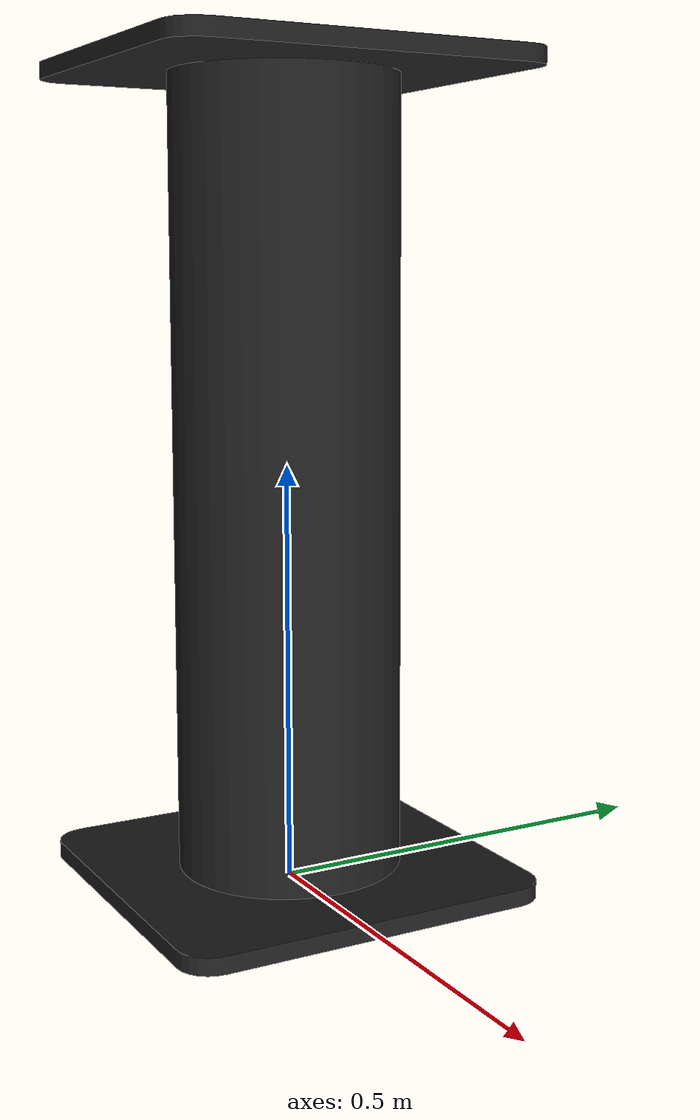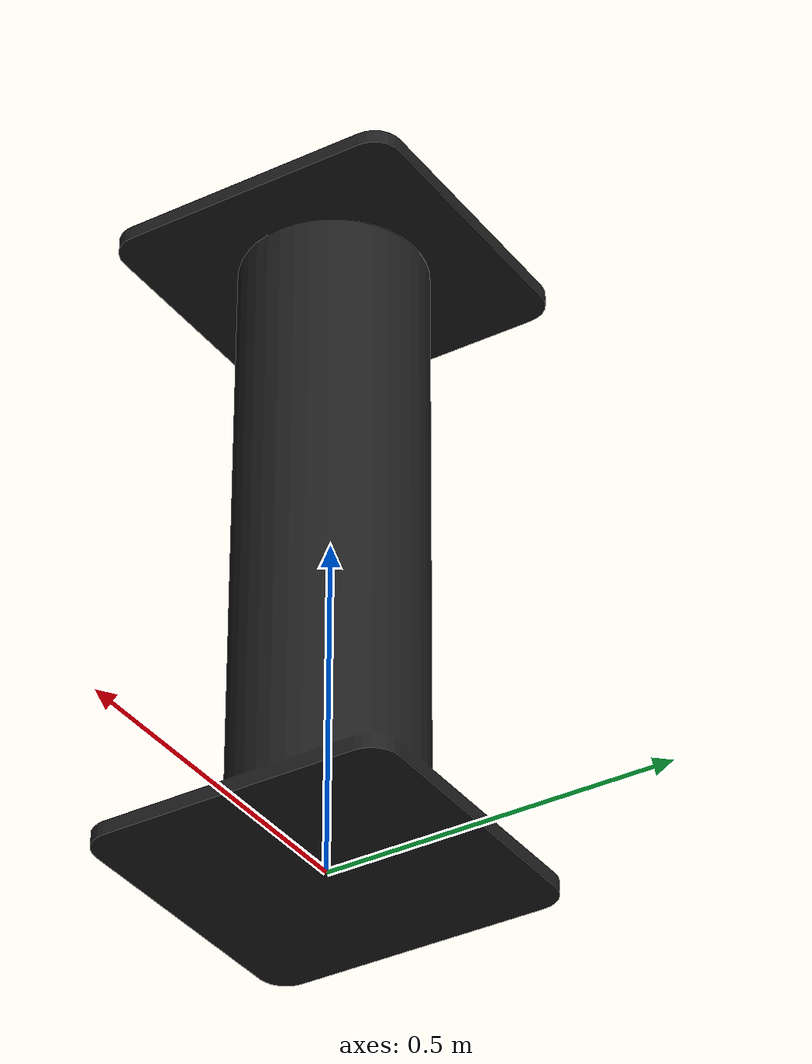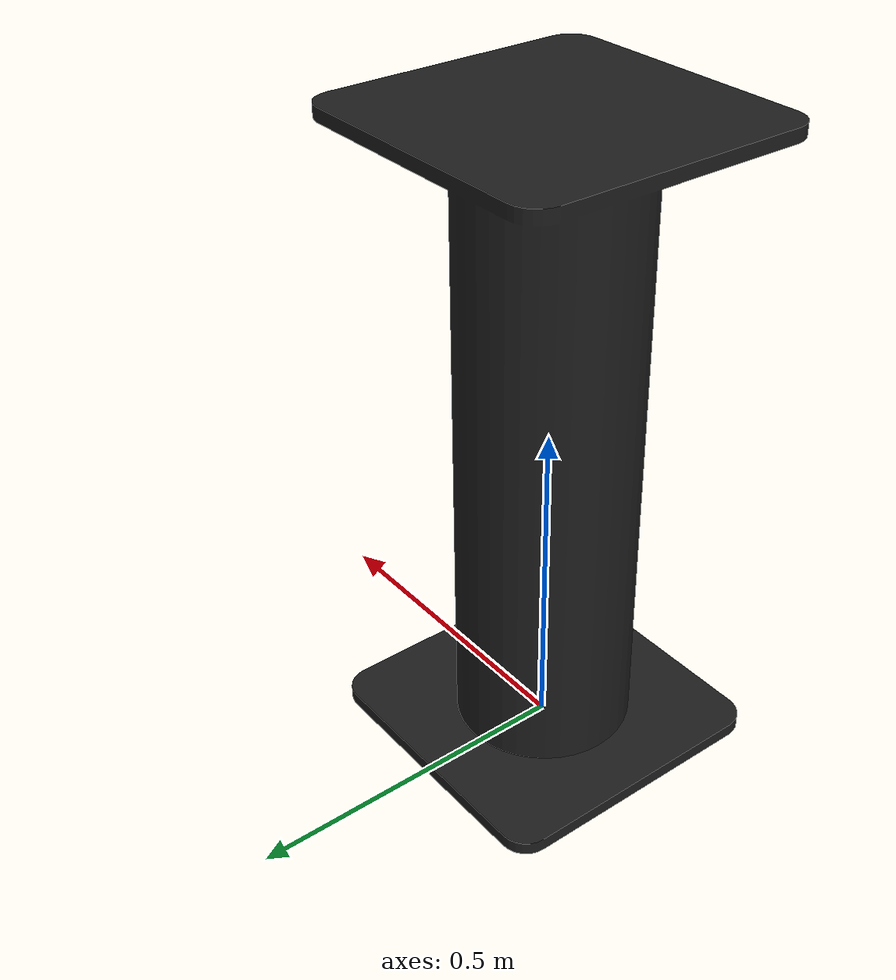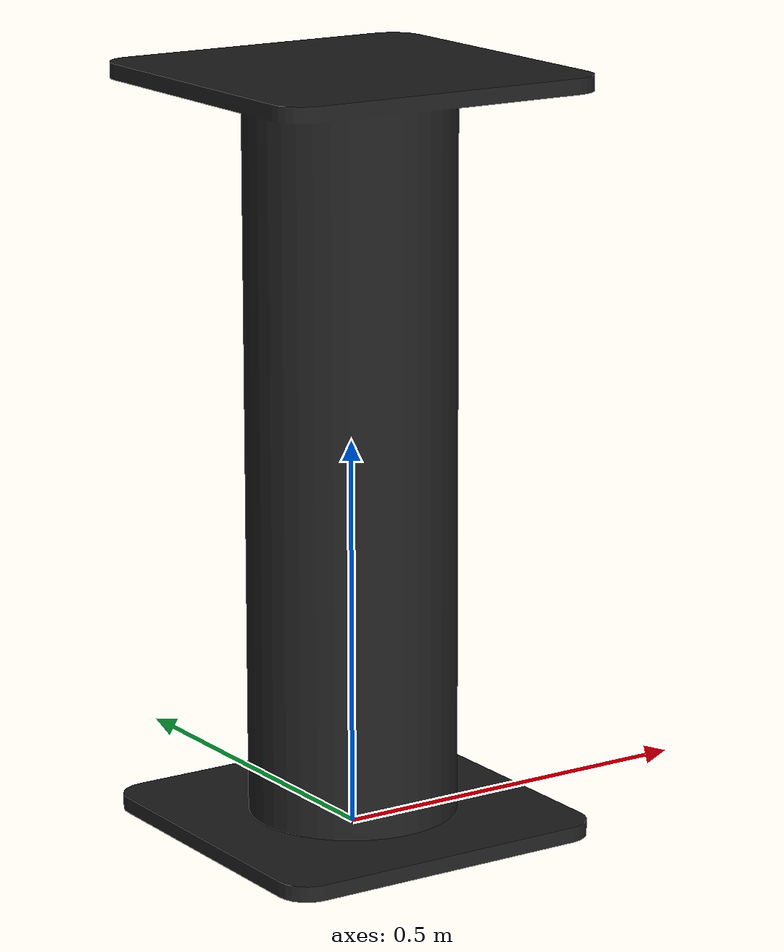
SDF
<?xml version="1.0"?>
<sdf version="1.9">
  <model name="robot_podium">
    <static>true</static>
    <link name="base_link">
      <visual name="visual">
        <geometry>
          <mesh>
            <uri>mesh/podium.stl</uri>
            <scale>0.01 0.01 0.01</scale>
          </mesh>
        </geometry>
        <material>
          <ambient>0.12 0.12 0.12 1</ambient>
          <diffuse>0.12 0.12 0.12 1</diffuse>
          <specular>0.05 0.05 0.05 1</specular>
          <emissive>0 0 0 1</emissive>
        </material>
      </visual>
      <collision name="collision">
        <geometry>
          <mesh>
            <uri>mesh/podium.stl</uri>
            <scale>0.01 0.01 0.01</scale>
          </mesh>
        </geometry>
      </collision>
    </link>
  </model>
</sdf>
